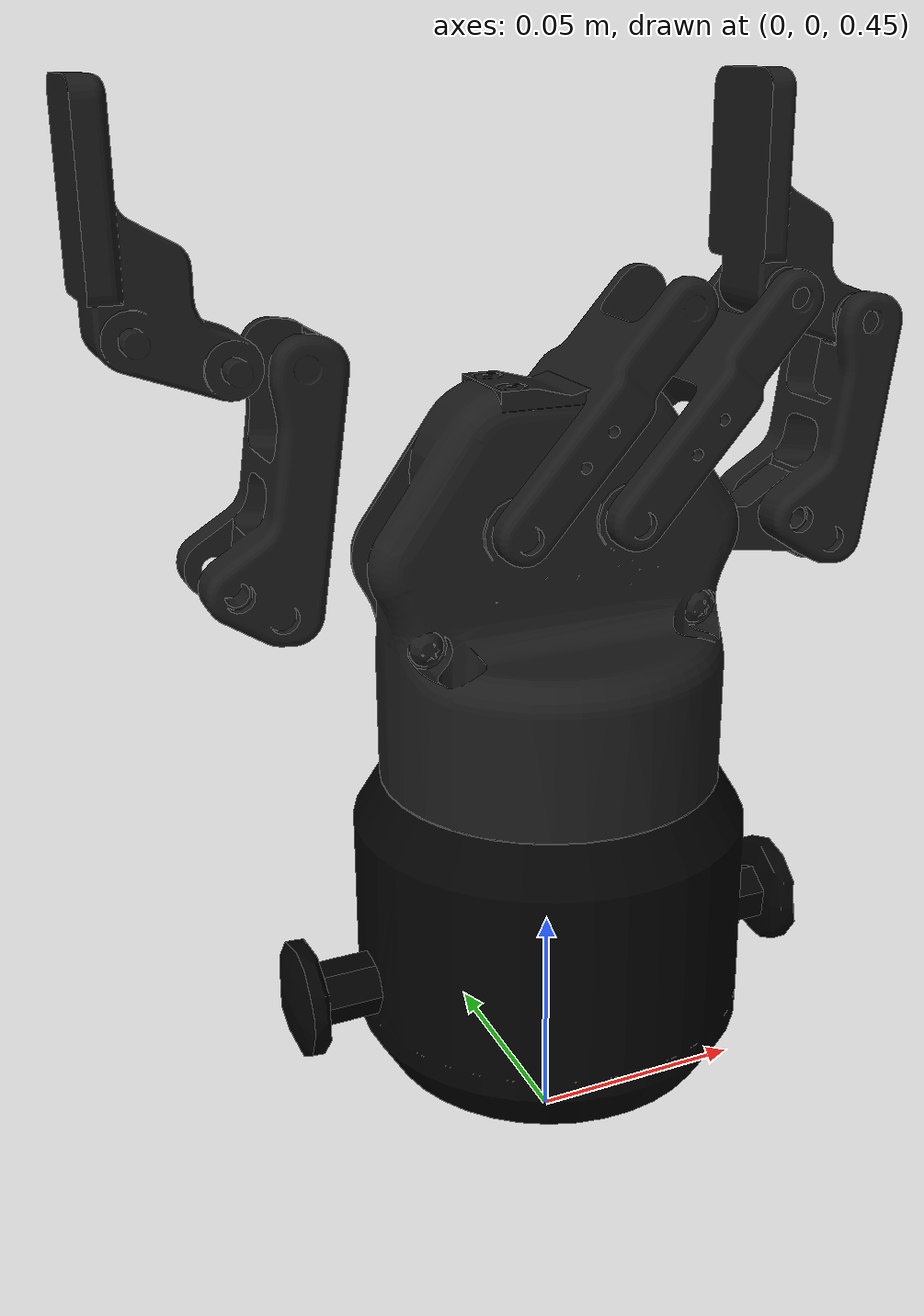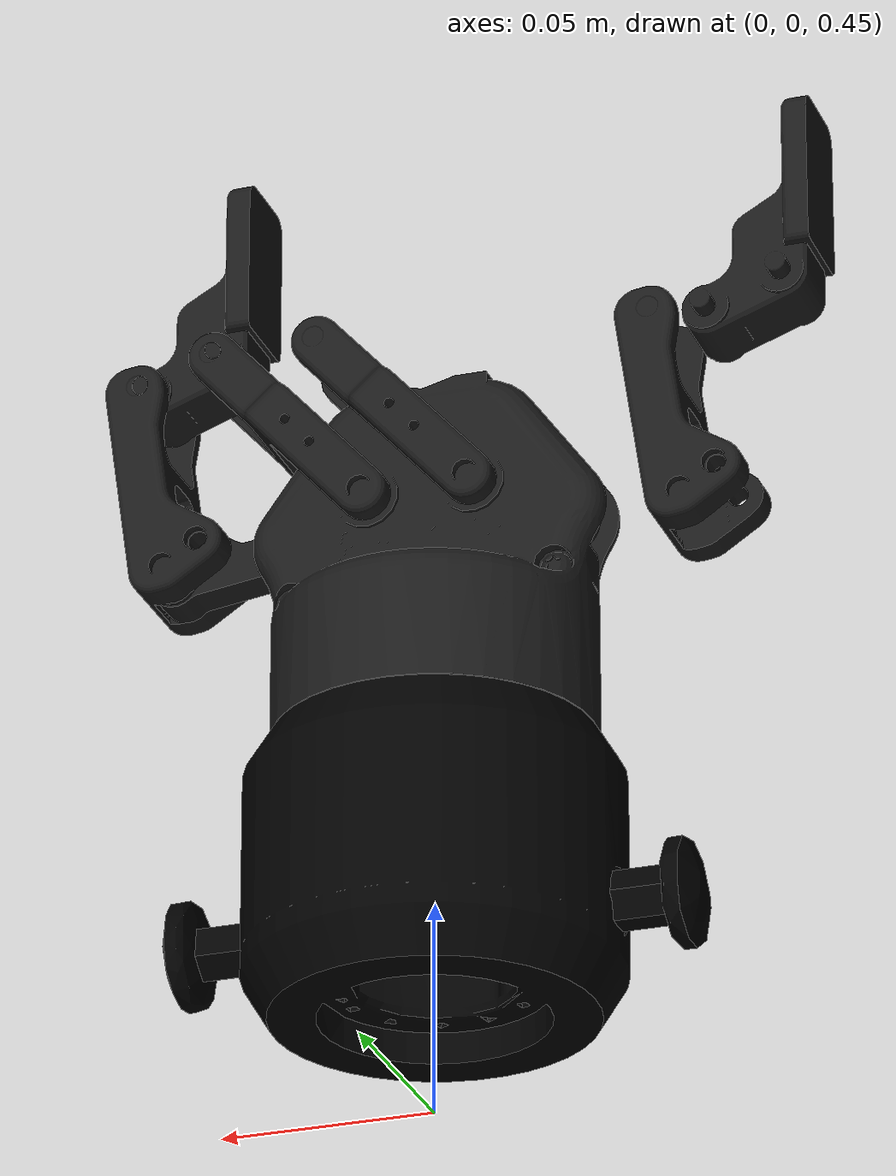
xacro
<?xml version="1.0"?>
<robot xmlns:xacro="http://ros.org/wiki/xacro" name="robotiq_85" >
  <!-- robotiq hande_gripper -->
  <xacro:include filename="$(find robotiq_85_gripper_description)/urdf/robotiq_85.urdf.xacro" />
  <xacro:robotiq_85 prefix="robotiq85"/>

  <link name="world" />

  <joint name="world_to_hande_joint" type="fixed">
    <origin rpy="0 0 0" xyz="0 0 0.5"/>
    <parent link="world"/>
    <child link="robotiq_adapter_link"/>
  </joint>

  <gazebo>
    <plugin filename="libgazebo_ros_joint_state_publisher.so" name="mara_joint_state">
      <ros>
        <argument>~/out:=joint_states</argument>
      </ros>
      <update_rate>25</update_rate>
      <joint_name>joint_finger</joint_name>
    </plugin>
  </gazebo>

</robot>

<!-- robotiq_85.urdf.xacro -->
<robot xmlns:xacro="http://ros.org/wiki/xacro">

  <xacro:macro name="robotiq_85"  params="prefix">

    <link name="robotiq_adapter_link">
      <inertial>
        <origin xyz="8.625E-08 -4.6583E-06 0.03145" rpy="0 0 0" />
        <mass value="0.22652" />
        <inertia ixx="0.00020005" ixy="0" ixz="0" iyy="0.00017832" iyz="0" izz="0.00013478" />
      </inertial>
      <visual>
        <origin xyz="0 0 0" rpy="0 0 0" />
        <geometry>
          <mesh filename="package://robotiq_85_gripper_description/meshes/hros_robotiq_adapter.dae" scale="0.001 0.001 0.001"/>
        </geometry>
        <material name="Gazebo/Black">
          <color rgba="0.0 0.0 0.0 1" />
        </material>
      </visual>
      <collision>
        <origin xyz="0 0 0" rpy="0 0 0" />
        <geometry>
          <mesh filename="package://robotiq_85_gripper_description/meshes/hros_robotiq_adapter.dae" scale="0.001 0.001 0.001"/>
        </geometry>
      </collision>
    </link>
    <gazebo reference="robotiq_adapter_link">
      <material>Gazebo/Black</material>
      <selfCollide>False</selfCollide>
    </gazebo>

    <joint name="base_adapter_to_base_robotiq_joint" type="fixed">
      <origin rpy="0 0 0" xyz=" 0 0 0.03653"/>
      <parent link="robotiq_adapter_link" />
      <child link="robotiq_arg2f_base"/>
    </joint>

    <link name="robotiq_arg2f_base">
      <inertial>
        <origin xyz="8.625E-08 -4.6583E-06 0.03145" rpy="0 0 0" />
        <mass value="0.22652" />
        <inertia ixx="0.00020005" ixy="0" ixz="0" iyy="0.00017832" iyz="0" izz="0.00013478" />
      </inertial>
      <visual>
        <origin xyz="0 0 0" rpy="0 0 0" />
        <geometry>
          <mesh filename="package://robotiq_85_gripper_description/meshes/base_gripper.dae" scale="0.001 0.001 0.001"/>
        </geometry>
        <material name="Gazebo/Black">
          <color rgba="0.1 0.1 0.1 1" />
        </material>
      </visual>
      <collision>
        <origin xyz="0 0 0" rpy="0 0 0" />
        <geometry>
          <mesh filename="package://robotiq_85_gripper_description/meshes/base_gripper.dae" scale="0.001 0.001 0.001"/>
        </geometry>
      </collision>
    </link>
    <gazebo reference="robotiq_arg2f_base">
      <material>Gazebo/Black</material>
      <selfCollide>True</selfCollide>
    </gazebo>

    <link name="left_outer_knuckle">
      <inertial>
        <origin xyz="8.625E-08 -4.6583E-06 0.03145" rpy="0 0 0" />
        <mass value="0.22652" />
        <inertia ixx="0.00020005" ixy="0" ixz="0" iyy="0.00017832" iyz="0" izz="0.00013478" />
      </inertial>
      <visual>
        <origin xyz="0 0 0" rpy="0 0 0" />
        <geometry>
          <mesh filename="package://robotiq_85_gripper_description/meshes/2-F-85_1_l.dae" scale="0.001 0.001 0.001"/>
        </geometry>
        <material name="Gazebo/Grey">
          <color rgba="0.1 0.1 0.1 1" />
        </material>
      </visual>
      <collision>
        <origin xyz="0 0 0" rpy="0 0 0" />
        <geometry>
          <mesh filename="package://robotiq_85_gripper_description/meshes/2-F-85_1_l.dae" scale="0.001 0.001 0.001"/>
        </geometry>
      </collision>
    </link>
    <gazebo reference="left_outer_knuckle">
      <material>Gazebo/Grey</material>
      <selfCollide>True</selfCollide>
    </gazebo>

    <link name="right_outer_knuckle">
      <inertial>
        <origin xyz="8.625E-08 -4.6583E-06 0.03145" rpy="0 0 0" />
        <mass value="0.22652" />
        <inertia ixx="0.00020005" ixy="0" ixz="0" iyy="0.00017832" iyz="0" izz="0.00013478" />
      </inertial>
      <visual>
        <origin xyz="0 0 0" rpy="0 0 0" />
        <geometry>
          <mesh filename="package://robotiq_85_gripper_description/meshes/2-F-85_1_r.dae" scale="0.001 0.001 0.001"/>
        </geometry>
        <material name="Gazebo/Grey">
          <color rgba="0.1 0.1 0.1 1" />
        </material>
      </visual>
      <collision>
        <origin xyz="0 0 0" rpy="0 0 0" />
        <geometry>
          <mesh filename="package://robotiq_85_gripper_description/meshes/2-F-85_1_r.dae" scale="0.001 0.001 0.001"/>
        </geometry>
      </collision>
    </link>
    <gazebo reference="right_outer_knuckle">
      <material>Gazebo/Grey</material>
      <selfCollide>True</selfCollide>
    </gazebo>

    <link name="left_outer_finger">
      <inertial>
        <origin xyz="8.625E-08 -4.6583E-06 0.03145" rpy="0 0 0" />
        <mass value="0.22652" />
        <inertia ixx="0.00020005" ixy="0" ixz="0" iyy="0.00017832" iyz="0" izz="0.00013478" />
      </inertial>
      <visual>
        <origin xyz="0 0 0" rpy="0 0 0" />
        <geometry>
          <mesh filename="package://robotiq_85_gripper_description/meshes/2-F-85_3_l.dae" scale="0.001 0.001 0.001"/>
        </geometry>
        <material name="Gazebo/Black">
          <color rgba="0.1 0.1 0.1 1" />
        </material>
      </visual>
      <collision>
        <origin xyz="0 0 0" rpy="0 0 0" />
        <geometry>
          <mesh filename="package://robotiq_85_gripper_description/meshes/2-F-85_3_l.dae" scale="0.001 0.001 0.001"/>
        </geometry>
      </collision>
    </link>
    <gazebo reference="left_outer_finger">
      <material>Gazebo/Black</material>
      <selfCollide>True</selfCollide>
    </gazebo>

    <link name="right_outer_finger">
      <inertial>
        <origin xyz="8.625E-08 -4.6583E-06 0.03145" rpy="0 0 0" />
        <mass value="0.22652" />
        <inertia ixx="0.00020005" ixy="0" ixz="0" iyy="0.00017832" iyz="0" izz="0.00013478" />
      </inertial>
      <visual>
        <origin xyz="0 0 0" rpy="0 0 0" />
        <geometry>
          <mesh filename="package://robotiq_85_gripper_description/meshes/2-F-85_3_r.dae" scale="0.001 0.001 0.001"/>
        </geometry>
        <material name="Gazebo/Black">
          <color rgba="0.1 0.1 0.1 1" />
        </material>
      </visual>
      <collision>
        <origin xyz="0 0 0" rpy="0 0 0" />
        <geometry>
          <mesh filename="package://robotiq_85_gripper_description/meshes/2-F-85_3_r.dae" scale="0.001 0.001 0.001"/>
        </geometry>
      </collision>
    </link>
    <gazebo reference="right_outer_finger">
      <material>Gazebo/Black</material>
      <selfCollide>True</selfCollide>
    </gazebo>

    <link name="left_inner_knuckle">
      <inertial>
        <origin xyz="8.625E-08 -4.6583E-06 0.03145" rpy="0 0 0" />
        <mass value="0.22652" />
        <inertia ixx="0.00020005" ixy="0" ixz="0" iyy="0.00017832" iyz="0" izz="0.00013478" />
      </inertial>
      <visual>
        <origin xyz="0 0 0" rpy="0 0 0" />
        <geometry>
          <mesh filename="package://robotiq_85_gripper_description/meshes/2-F-85_2_l.dae" scale="0.001 0.001 0.001"/>
        </geometry>
        <material name="Gazebo/Black">
          <color rgba="0.1 0.1 0.1 1" />
        </material>
      </visual>
      <collision>
        <origin xyz="0 0 0" rpy="0 0 0" />
        <geometry>
          <mesh filename="package://robotiq_85_gripper_description/meshes/2-F-85_2_l.dae" scale="0.001 0.001 0.001"/>
        </geometry>
      </collision>
    </link>
    <gazebo reference="left_inner_knuckle">
      <material>Gazebo/Black</material>
      <selfCollide>True</selfCollide>
    </gazebo>

    <link name="right_inner_knuckle">
      <inertial>
        <origin xyz="8.625E-08 -4.6583E-06 0.03145" rpy="0 0 0" />
        <mass value="0.22652" />
        <inertia ixx="0.00020005" ixy="0" ixz="0" iyy="0.00017832" iyz="0" izz="0.00013478" />
      </inertial>
      <visual>
        <origin xyz="0 0 0" rpy="0 0 0" />
        <geometry>
          <mesh filename="package://robotiq_85_gripper_description/meshes/2-F-85_2_r.dae" scale="0.001 0.001 0.001"/>
        </geometry>
        <material name="Gazebo/Black">
          <color rgba="0.1 0.1 0.1 1" />
        </material>
      </visual>
      <collision>
        <origin xyz="0 0 0" rpy="0 0 0" />
        <geometry>
          <mesh filename="package://robotiq_85_gripper_description/meshes/2-F-85_2_r.dae" scale="0.001 0.001 0.001"/>
        </geometry>
      </collision>
    </link>
    <gazebo reference="right_inner_knuckle">
      <material>Gazebo/Black</material>
      <selfCollide>True</selfCollide>
    </gazebo>

    <link name="left_inner_finger">
      <inertial>
        <origin xyz="8.625E-08 -4.6583E-06 0.03145" rpy="0 0 0" />
        <mass value="0.22652" />
        <inertia ixx="0.00020005" ixy="0" ixz="0" iyy="0.00017832" iyz="0" izz="0.00013478" />
      </inertial>
      <visual>
        <origin xyz="0 0 0" rpy="0 0 0" />
        <geometry>
          <mesh filename="package://robotiq_85_gripper_description/meshes/2-F-85_4_l.dae" scale="0.001 0.001 0.001"/>
        </geometry>
        <material name="Gazebo/Black">
          <color rgba="0.1 0.1 0.1 1" />
        </material>
      </visual>
      <collision>
        <origin xyz="0 0 0" rpy="0 0 0" />
        <geometry>
          <mesh filename="package://robotiq_85_gripper_description/meshes/2-F-85_4_l.dae" scale="0.001 0.001 0.001"/>
        </geometry>
      </collision>
    </link>
    <gazebo reference="left_inner_finger">
      <material>Gazebo/Black</material>
      <selfCollide>True</selfCollide>
    </gazebo>

    <link name="right_inner_finger">
      <inertial>
        <origin xyz="8.625E-08 -4.6583E-06 0.03145" rpy="0 0 0" />
        <mass value="0.22652" />
        <inertia ixx="0.00020005" ixy="0" ixz="0" iyy="0.00017832" iyz="0" izz="0.00013478" />
      </inertial>
      <visual>
        <origin xyz="0 0 0" rpy="0 0 0" />
        <geometry>
          <mesh filename="package://robotiq_85_gripper_description/meshes/2-F-85_4_r.dae" scale="0.001 0.001 0.001"/>
        </geometry>
        <material name="Gazebo/Black">
          <color rgba="0.1 0.1 0.1 1" />
        </material>
      </visual>
      <collision>
        <origin xyz="0 0 0" rpy="0 0 0" />
        <geometry>
          <mesh filename="package://robotiq_85_gripper_description/meshes/2-F-85_4_r.dae" scale="0.001 0.001 0.001"/>
        </geometry>
      </collision>
    </link>
    <gazebo reference="right_inner_finger">
      <material>Gazebo/Black</material>
      <selfCollide>True</selfCollide>
    </gazebo>

    <joint name="left_outer_knuckle_joint" type="revolute">
      <origin xyz="-0.0306 0 0.05490" rpy="0 0 0" />
      <parent link="robotiq_arg2f_base" />
      <child link="left_outer_knuckle" />
      <axis xyz="0 1 0" />
      <limit lower="0.0" upper="0.78" velocity="2.0" effort="1000" />
      <mimic joint="joint_finger" multiplier="1" offset="0"/>
    </joint>

    <joint name="joint_finger" type="revolute">
      <origin xyz="0.0306 0 0.05490" rpy="0 0 3.1416" />
      <parent link="robotiq_arg2f_base" />
      <child link="right_outer_knuckle" />
      <axis xyz="0 1 0" />
      <limit lower="0" upper="0.78" velocity="2.0" effort="1000" />
    </joint>

    <joint name="left_inner_knuckle_joint" type="revolute">
      <origin xyz="-0.0127 0 0.06142" rpy="0 0 0" />
      <parent link="robotiq_arg2f_base" />
      <child link="left_inner_knuckle" />
      <axis xyz="0 1 0" />
      <limit lower="0" upper="0.8757" velocity="2.0" effort="1000" />
      <mimic joint="joint_finger" multiplier="1" offset="0"/>
    </joint>

    <joint name="right_inner_knuckle_joint" type="revolute">
      <origin xyz="0.0127 0 0.06142" rpy="0 0 3.1416" />
      <parent link="robotiq_arg2f_base" />
      <child link="right_inner_knuckle" />
      <axis xyz="0 1 0" />
      <limit lower="0" upper="0.8757" velocity="2.0" effort="1000" />
      <mimic joint="joint_finger" multiplier="1" offset="0"/>
    </joint>

    <joint name="left_inner_finger_joint" type="revolute">
      <origin xyz="-0.005625 0 0.04718" rpy="0 0.0 0" />
      <parent link="left_outer_finger" />
      <child link="left_inner_finger" />
      <axis xyz="0 -1 0" />
      <limit lower="0" upper="0.775" velocity="2.0" effort="1000" />
      <mimic joint="joint_finger" multiplier="1" offset="0"/>
    </joint>

    <joint name="right_inner_finger_joint" type="revolute">
      <origin xyz="-0.005625 0 0.04718" rpy="0 0 0" />
      <parent link="right_outer_finger" />
      <child link="right_inner_finger" />
      <axis xyz="0 -1 0" />
      <limit lower="0" upper="0.775" velocity="2.0" effort="1000" />
      <mimic joint="joint_finger" multiplier="1" offset="0"/>
    </joint>

    <joint name="left_outer_finger_joint" type="fixed">
      <origin xyz="-0.03156 0 -0.003758" rpy="0 0 0" />
      <parent link="left_outer_knuckle" />
      <child link="left_outer_finger" />
    </joint>

    <joint name="right_outer_finger_joint" type="fixed">
      <origin xyz="-0.03156 0 -0.003758" rpy="0 0 0" />
      <parent link="right_outer_knuckle" />
      <child link="right_outer_finger" />
    </joint>

    <gazebo>
      <joint name="left_finger_joint2" type="revolute">
        <pose frame="">0.017901 0 0.00651469 0 0 0</pose>
        <parent>${prefix}::left_inner_knuckle</parent>
        <child>${prefix}::left_inner_finger</child>
        <axis>
          <xyz>0 -1 0</xyz>
          <limit>
            <lower>-0.8</lower>
            <upper>0.8</upper>
            <velocity>2.0</velocity>
            <effort>1000</effort>
          </limit>
        </axis>
      </joint>

      <joint name="right_finger_joint2" type="revolute">
        <pose frame="">0.017901 0 0.00651469 0 0 0</pose>
        <parent>${prefix}::right_inner_knuckle</parent>
        <child>${prefix}::right_inner_finger</child>
        <axis>
          <xyz>0 1 0</xyz>
          <limit>
            <lower>-0.8</lower>
            <upper>0.8</upper>
            <velocity>2.0</velocity>
            <effort>1000</effort>
          </limit>
        </axis>
      </joint>
      <plugin filename="librobotiq_gripper_gazebo_plugin.so" name="hrim_actuation_gripper_000000000004">
        <joint>left_inner_knuckle_joint</joint>
        <joint>left_outer_knuckle_joint</joint>
        <joint>right_inner_knuckle_joint</joint>
        <joint>joint_finger</joint>
      </plugin>
      <plugin filename="libgazebo_ros_joint_state_publisher.so" name="mara_joint_state">
        <ros>
          <argument>~/out:=joint_states</argument>
        </ros>
        <update_rate>25</update_rate>
        <joint_name>joint_finger</joint_name>
      </plugin>
    </gazebo>
  </xacro:macro>
</robot>
